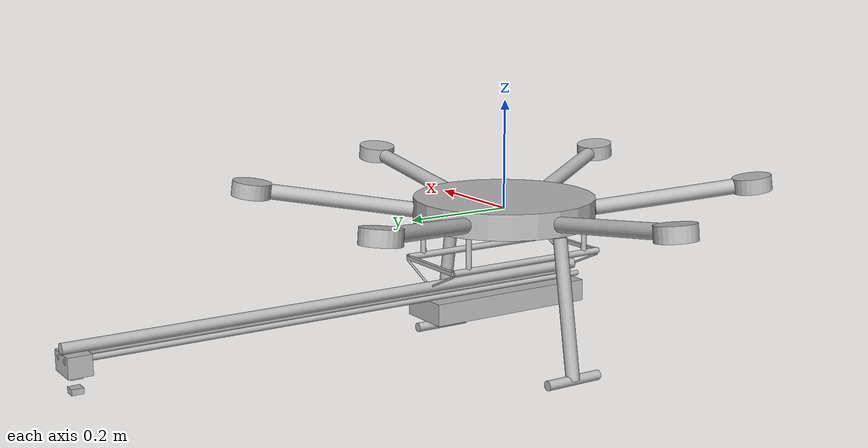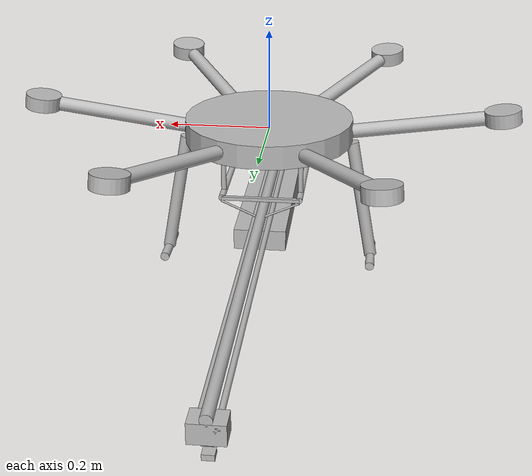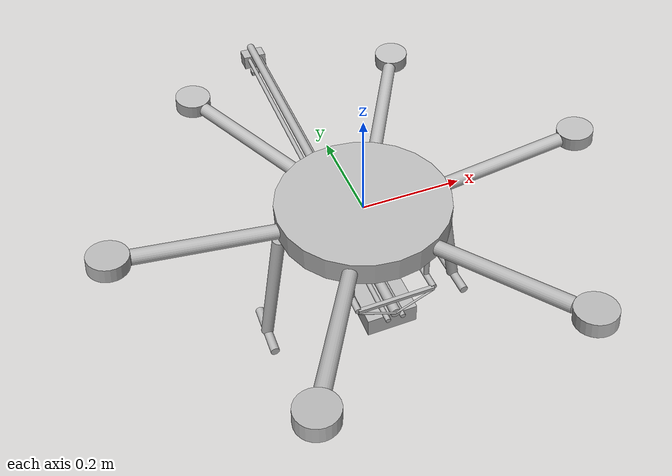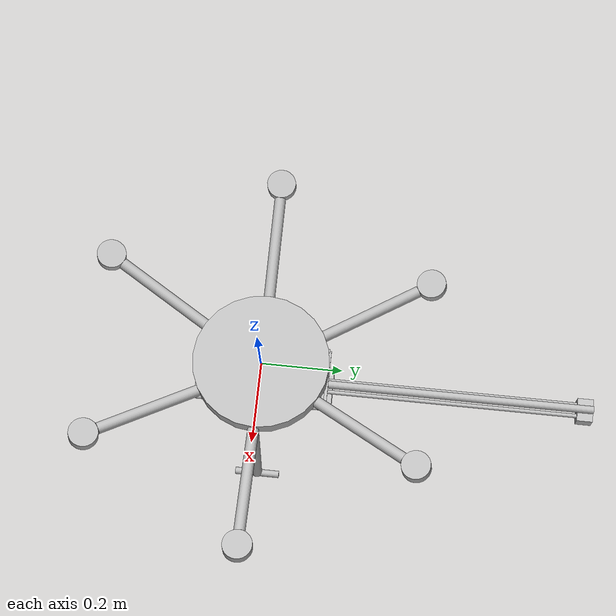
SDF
<sdf version="1.6">
 <model name="UAV">
  <self_collide>true</self_collide>
  <link name="1-gear">
   <pose>0.16811999898880714 0.0 -0.023349999859556547 0.0 -0.17452777756585014 0.0</pose>
   <inertial>
    <inertia><ixx>1.0</ixx><ixy>0.0</ixy><ixz>0.0</ixz><iyy>1.0</iyy><iyz>0.0</iyz><izz>1.0</izz></inertia>
    <mass>1.0</mass>
   </inertial>
   <collision name="1--leg">
    <laser_retro>0.0</laser_retro>
    <pose>0.0 0.0 -0.12654999450109905 0.0 -3.1414999961853027 0.0</pose>
    <geometry>
     <cylinder><radius>0.012499999720603228</radius><length>0.2530999890021981</length></cylinder>
    </geometry>
    <surface>
     <bounce><restitution_coefficient>0.0</restitution_coefficient><threshold>100000.0</threshold></bounce>
     <friction>
      <ode><mu>1.0</mu><mu2>1.0</mu2><fdir1>0.0 0.0 0.0</fdir1><slip1>0.0</slip1><slip2>0.0</slip2></ode>
      <torsional><coefficient>1.0</coefficient><surface_radius>0.0</surface_radius></torsional>
     </friction>
    </surface>
   </collision>
   <visual name="1--leg">
    <laser_retro>0.0</laser_retro>
    <pose>0.0 0.0 -0.12654999450109905 0.0 -3.1414999961853027 0.0</pose>
    <geometry>
     <cylinder><radius>0.012499999720603228</radius><length>0.2530999890021981</length></cylinder>
    </geometry>
    <surface>
     <bounce><restitution_coefficient>0.0</restitution_coefficient><threshold>100000.0</threshold></bounce>
     <friction>
      <ode><mu>1.0</mu><mu2>1.0</mu2><fdir1>0.0 0.0 0.0</fdir1><slip1>0.0</slip1><slip2>0.0</slip2></ode>
      <torsional><coefficient>1.0</coefficient><surface_radius>0.0</surface_radius></torsional>
     </friction>
    </surface>
   </visual>
   <collision name="2--foot">
    <laser_retro>0.0</laser_retro>
    <pose>0.0 0.0 -0.2530999890021981 1.5707499980926514 -1.5707499980926514 0.0</pose>
    <geometry>
     <cylinder><radius>0.00899999956041575</radius><length>0.11249999748542905</length></cylinder>
    </geometry>
    <surface>
     <bounce><restitution_coefficient>0.0</restitution_coefficient><threshold>100000.0</threshold></bounce>
     <friction>
      <ode><mu>1.0</mu><mu2>1.0</mu2><fdir1>0.0 0.0 0.0</fdir1><slip1>0.0</slip1><slip2>0.0</slip2></ode>
      <torsional><coefficient>1.0</coefficient><surface_radius>0.0</surface_radius></torsional>
     </friction>
    </surface>
   </collision>
   <visual name="2--foot">
    <laser_retro>0.0</laser_retro>
    <pose>0.0 0.0 -0.2530999890021981 1.5707499980926514 -1.5707499980926514 0.0</pose>
    <geometry>
     <cylinder><radius>0.00899999956041575</radius><length>0.11249999748542905</length></cylinder>
    </geometry>
    <surface>
     <bounce><restitution_coefficient>0.0</restitution_coefficient><threshold>100000.0</threshold></bounce>
     <friction>
      <ode><mu>1.0</mu><mu2>1.0</mu2><fdir1>0.0 0.0 0.0</fdir1><slip1>0.0</slip1><slip2>0.0</slip2></ode>
      <torsional><coefficient>1.0</coefficient><surface_radius>0.0</surface_radius></torsional>
     </friction>
    </surface>
   </visual>
  </link>
  <joint name="3-fixedJoint" type="fixed">
   <parent>1-gear</parent>
   <child>2-Hub</child>
   <axis><xyz>0 0 1</xyz></axis>
  </joint>
  <link name="4-gear">
   <pose>-0.16811999898880714 0.0 -0.023349999859556547 0.0 -0.17452777756585014 3.1414999961853027</pose>
   <inertial>
    <inertia><ixx>1.0</ixx><ixy>0.0</ixy><ixz>0.0</ixz><iyy>1.0</iyy><iyz>0.0</iyz><izz>1.0</izz></inertia>
    <mass>1.0</mass>
   </inertial>
   <collision name="3--leg">
    <laser_retro>0.0</laser_retro>
    <pose>0.0 0.0 -0.12654999450109905 0.0 -3.1414999961853027 0.0</pose>
    <geometry>
     <cylinder><radius>0.012499999720603228</radius><length>0.2530999890021981</length></cylinder>
    </geometry>
    <surface>
     <bounce><restitution_coefficient>0.0</restitution_coefficient><threshold>100000.0</threshold></bounce>
     <friction>
      <ode><mu>1.0</mu><mu2>1.0</mu2><fdir1>0.0 0.0 0.0</fdir1><slip1>0.0</slip1><slip2>0.0</slip2></ode>
      <torsional><coefficient>1.0</coefficient><surface_radius>0.0</surface_radius></torsional>
     </friction>
    </surface>
   </collision>
   <visual name="3--leg">
    <laser_retro>0.0</laser_retro>
    <pose>0.0 0.0 -0.12654999450109905 0.0 -3.1414999961853027 0.0</pose>
    <geometry>
     <cylinder><radius>0.012499999720603228</radius><length>0.2530999890021981</length></cylinder>
    </geometry>
    <surface>
     <bounce><restitution_coefficient>0.0</restitution_coefficient><threshold>100000.0</threshold></bounce>
     <friction>
      <ode><mu>1.0</mu><mu2>1.0</mu2><fdir1>0.0 0.0 0.0</fdir1><slip1>0.0</slip1><slip2>0.0</slip2></ode>
      <torsional><coefficient>1.0</coefficient><surface_radius>0.0</surface_radius></torsional>
     </friction>
    </surface>
   </visual>
   <collision name="4--foot">
    <laser_retro>0.0</laser_retro>
    <pose>0.0 0.0 -0.2530999890021981 1.5707499980926514 -1.5707499980926514 0.0</pose>
    <geometry>
     <cylinder><radius>0.00899999956041575</radius><length>0.11249999748542905</length></cylinder>
    </geometry>
    <surface>
     <bounce><restitution_coefficient>0.0</restitution_coefficient><threshold>100000.0</threshold></bounce>
     <friction>
      <ode><mu>1.0</mu><mu2>1.0</mu2><fdir1>0.0 0.0 0.0</fdir1><slip1>0.0</slip1><slip2>0.0</slip2></ode>
      <torsional><coefficient>1.0</coefficient><surface_radius>0.0</surface_radius></torsional>
     </friction>
    </surface>
   </collision>
   <visual name="4--foot">
    <laser_retro>0.0</laser_retro>
    <pose>0.0 0.0 -0.2530999890021981 1.5707499980926514 -1.5707499980926514 0.0</pose>
    <geometry>
     <cylinder><radius>0.00899999956041575</radius><length>0.11249999748542905</length></cylinder>
    </geometry>
    <surface>
     <bounce><restitution_coefficient>0.0</restitution_coefficient><threshold>100000.0</threshold></bounce>
     <friction>
      <ode><mu>1.0</mu><mu2>1.0</mu2><fdir1>0.0 0.0 0.0</fdir1><slip1>0.0</slip1><slip2>0.0</slip2></ode>
      <torsional><coefficient>1.0</coefficient><surface_radius>0.0</surface_radius></torsional>
     </friction>
    </surface>
   </visual>
  </link>
  <joint name="5-fixedJoint" type="fixed">
   <parent>4-gear</parent>
   <child>2-Hub</child>
   <axis><xyz>0 0 1</xyz></axis>
  </joint>
  <link name="6-arm">
   <pose>0.08406449630933237 0.14559359367861882 0.0 0.0 -0.1396222220526801 1.0471666653951008</pose>
   <inertial>
    <inertia><ixx>1.0</ixx><ixy>0.0</ixy><ixz>0.0</ixz><iyy>1.0</iyy><iyz>0.0</iyz><izz>1.0</izz></inertia>
    <mass>1.0</mass>
   </inertial>
   <collision name="5--Pole">
    <laser_retro>0.0</laser_retro>
    <pose>0.129949995950982 0.0 0.0 0.0 -1.5707499980926514 0.0</pose>
    <geometry>
     <cylinder><radius>0.013999999448657041</radius><length>0.259899991901964</length></cylinder>
    </geometry>
    <surface>
     <bounce><restitution_coefficient>0.0</restitution_coefficient><threshold>100000.0</threshold></bounce>
     <friction>
      <ode><mu>1.0</mu><mu2>1.0</mu2><fdir1>0.0 0.0 0.0</fdir1><slip1>0.0</slip1><slip2>0.0</slip2></ode>
      <torsional><coefficient>1.0</coefficient><surface_radius>0.0</surface_radius></torsional>
     </friction>
    </surface>
   </collision>
   <visual name="5--Pole">
    <laser_retro>0.0</laser_retro>
    <pose>0.129949995950982 0.0 0.0 0.0 -1.5707499980926514 0.0</pose>
    <geometry>
     <cylinder><radius>0.013999999448657041</radius><length>0.259899991901964</length></cylinder>
    </geometry>
    <surface>
     <bounce><restitution_coefficient>0.0</restitution_coefficient><threshold>100000.0</threshold></bounce>
     <friction>
      <ode><mu>1.0</mu><mu2>1.0</mu2><fdir1>0.0 0.0 0.0</fdir1><slip1>0.0</slip1><slip2>0.0</slip2></ode>
      <torsional><coefficient>1.0</coefficient><surface_radius>0.0</surface_radius></torsional>
     </friction>
    </surface>
   </visual>
   <collision name="6--MotorHolder">
    <laser_retro>0.0</laser_retro>
    <pose>0.295899990143627 0.0 0.0 0.0 0.0 0.0</pose>
    <geometry>
     <cylinder><radius>0.035999998241663</radius><length>0.027999998897314082</length></cylinder>
    </geometry>
    <surface>
     <bounce><restitution_coefficient>0.0</restitution_coefficient><threshold>100000.0</threshold></bounce>
     <friction>
      <ode><mu>1.0</mu><mu2>1.0</mu2><fdir1>0.0 0.0 0.0</fdir1><slip1>0.0</slip1><slip2>0.0</slip2></ode>
      <torsional><coefficient>1.0</coefficient><surface_radius>0.0</surface_radius></torsional>
     </friction>
    </surface>
   </collision>
   <visual name="6--MotorHolder">
    <laser_retro>0.0</laser_retro>
    <pose>0.295899990143627 0.0 0.0 0.0 0.0 0.0</pose>
    <geometry>
     <cylinder><radius>0.035999998241663</radius><length>0.027999998897314082</length></cylinder>
    </geometry>
    <surface>
     <bounce><restitution_coefficient>0.0</restitution_coefficient><threshold>100000.0</threshold></bounce>
     <friction>
      <ode><mu>1.0</mu><mu2>1.0</mu2><fdir1>0.0 0.0 0.0</fdir1><slip1>0.0</slip1><slip2>0.0</slip2></ode>
      <torsional><coefficient>1.0</coefficient><surface_radius>0.0</surface_radius></torsional>
     </friction>
    </surface>
   </visual>
  </link>
  <link name="7-arm">
   <pose>-0.0840510056239875 0.1456013822516563 0.0 0.0 -0.1396222220526801 2.094333330790202</pose>
   <inertial>
    <inertia><ixx>1.0</ixx><ixy>0.0</ixy><ixz>0.0</ixz><iyy>1.0</iyy><iyz>0.0</iyz><izz>1.0</izz></inertia>
    <mass>1.0</mass>
   </inertial>
   <collision name="7--Pole">
    <laser_retro>0.0</laser_retro>
    <pose>0.129949995950982 0.0 0.0 0.0 -1.5707499980926514 0.0</pose>
    <geometry>
     <cylinder><radius>0.013999999448657041</radius><length>0.259899991901964</length></cylinder>
    </geometry>
    <surface>
     <bounce><restitution_coefficient>0.0</restitution_coefficient><threshold>100000.0</threshold></bounce>
     <friction>
      <ode><mu>1.0</mu><mu2>1.0</mu2><fdir1>0.0 0.0 0.0</fdir1><slip1>0.0</slip1><slip2>0.0</slip2></ode>
      <torsional><coefficient>1.0</coefficient><surface_radius>0.0</surface_radius></torsional>
     </friction>
    </surface>
   </collision>
   <visual name="7--Pole">
    <laser_retro>0.0</laser_retro>
    <pose>0.129949995950982 0.0 0.0 0.0 -1.5707499980926514 0.0</pose>
    <geometry>
     <cylinder><radius>0.013999999448657041</radius><length>0.259899991901964</length></cylinder>
    </geometry>
    <surface>
     <bounce><restitution_coefficient>0.0</restitution_coefficient><threshold>100000.0</threshold></bounce>
     <friction>
      <ode><mu>1.0</mu><mu2>1.0</mu2><fdir1>0.0 0.0 0.0</fdir1><slip1>0.0</slip1><slip2>0.0</slip2></ode>
      <torsional><coefficient>1.0</coefficient><surface_radius>0.0</surface_radius></torsional>
     </friction>
    </surface>
   </visual>
   <collision name="8--MotorHolder">
    <laser_retro>0.0</laser_retro>
    <pose>0.295899990143627 0.0 0.0 0.0 0.0 0.0</pose>
    <geometry>
     <cylinder><radius>0.035999998241663</radius><length>0.027999998897314082</length></cylinder>
    </geometry>
    <surface>
     <bounce><restitution_coefficient>0.0</restitution_coefficient><threshold>100000.0</threshold></bounce>
     <friction>
      <ode><mu>1.0</mu><mu2>1.0</mu2><fdir1>0.0 0.0 0.0</fdir1><slip1>0.0</slip1><slip2>0.0</slip2></ode>
      <torsional><coefficient>1.0</coefficient><surface_radius>0.0</surface_radius></torsional>
     </friction>
    </surface>
   </collision>
   <visual name="8--MotorHolder">
    <laser_retro>0.0</laser_retro>
    <pose>0.295899990143627 0.0 0.0 0.0 0.0 0.0</pose>
    <geometry>
     <cylinder><radius>0.035999998241663</radius><length>0.027999998897314082</length></cylinder>
    </geometry>
    <surface>
     <bounce><restitution_coefficient>0.0</restitution_coefficient><threshold>100000.0</threshold></bounce>
     <friction>
      <ode><mu>1.0</mu><mu2>1.0</mu2><fdir1>0.0 0.0 0.0</fdir1><slip1>0.0</slip1><slip2>0.0</slip2></ode>
      <torsional><coefficient>1.0</coefficient><surface_radius>0.0</surface_radius></torsional>
     </friction>
    </surface>
   </visual>
  </link>
  <link name="8-arm">
   <pose>-0.16811999826711888 1.557756272695912E-5 0.0 0.0 -0.1396222220526801 3.1414999961853027</pose>
   <inertial>
    <inertia><ixx>1.0</ixx><ixy>0.0</ixy><ixz>0.0</ixz><iyy>1.0</iyy><iyz>0.0</iyz><izz>1.0</izz></inertia>
    <mass>1.0</mass>
   </inertial>
   <collision name="9--Pole">
    <laser_retro>0.0</laser_retro>
    <pose>0.129949995950982 0.0 0.0 0.0 -1.5707499980926514 0.0</pose>
    <geometry>
     <cylinder><radius>0.013999999448657041</radius><length>0.259899991901964</length></cylinder>
    </geometry>
    <surface>
     <bounce><restitution_coefficient>0.0</restitution_coefficient><threshold>100000.0</threshold></bounce>
     <friction>
      <ode><mu>1.0</mu><mu2>1.0</mu2><fdir1>0.0 0.0 0.0</fdir1><slip1>0.0</slip1><slip2>0.0</slip2></ode>
      <torsional><coefficient>1.0</coefficient><surface_radius>0.0</surface_radius></torsional>
     </friction>
    </surface>
   </collision>
   <visual name="9--Pole">
    <laser_retro>0.0</laser_retro>
    <pose>0.129949995950982 0.0 0.0 0.0 -1.5707499980926514 0.0</pose>
    <geometry>
     <cylinder><radius>0.013999999448657041</radius><length>0.259899991901964</length></cylinder>
    </geometry>
    <surface>
     <bounce><restitution_coefficient>0.0</restitution_coefficient><threshold>100000.0</threshold></bounce>
     <friction>
      <ode><mu>1.0</mu><mu2>1.0</mu2><fdir1>0.0 0.0 0.0</fdir1><slip1>0.0</slip1><slip2>0.0</slip2></ode>
      <torsional><coefficient>1.0</coefficient><surface_radius>0.0</surface_radius></torsional>
     </friction>
    </surface>
   </visual>
   <collision name="10--MotorHolder">
    <laser_retro>0.0</laser_retro>
    <pose>0.295899990143627 0.0 0.0 0.0 0.0 0.0</pose>
    <geometry>
     <cylinder><radius>0.035999998241663</radius><length>0.027999998897314082</length></cylinder>
    </geometry>
    <surface>
     <bounce><restitution_coefficient>0.0</restitution_coefficient><threshold>100000.0</threshold></bounce>
     <friction>
      <ode><mu>1.0</mu><mu2>1.0</mu2><fdir1>0.0 0.0 0.0</fdir1><slip1>0.0</slip1><slip2>0.0</slip2></ode>
      <torsional><coefficient>1.0</coefficient><surface_radius>0.0</surface_radius></torsional>
     </friction>
    </surface>
   </collision>
   <visual name="10--MotorHolder">
    <laser_retro>0.0</laser_retro>
    <pose>0.295899990143627 0.0 0.0 0.0 0.0 0.0</pose>
    <geometry>
     <cylinder><radius>0.035999998241663</radius><length>0.027999998897314082</length></cylinder>
    </geometry>
    <surface>
     <bounce><restitution_coefficient>0.0</restitution_coefficient><threshold>100000.0</threshold></bounce>
     <friction>
      <ode><mu>1.0</mu><mu2>1.0</mu2><fdir1>0.0 0.0 0.0</fdir1><slip1>0.0</slip1><slip2>0.0</slip2></ode>
      <torsional><coefficient>1.0</coefficient><surface_radius>0.0</surface_radius></torsional>
     </friction>
    </surface>
   </visual>
  </link>
  <link name="9-arm">
   <pose>-0.08407798627295038 -0.1455858038556029 0.0 0.0 -0.1396222220526801 -2.0945186455991833</pose>
   <inertial>
    <inertia><ixx>1.0</ixx><ixy>0.0</ixy><ixz>0.0</ixz><iyy>1.0</iyy><iyz>0.0</iyz><izz>1.0</izz></inertia>
    <mass>1.0</mass>
   </inertial>
   <collision name="11--Pole">
    <laser_retro>0.0</laser_retro>
    <pose>0.129949995950982 0.0 0.0 0.0 -1.5707499980926514 0.0</pose>
    <geometry>
     <cylinder><radius>0.013999999448657041</radius><length>0.259899991901964</length></cylinder>
    </geometry>
    <surface>
     <bounce><restitution_coefficient>0.0</restitution_coefficient><threshold>100000.0</threshold></bounce>
     <friction>
      <ode><mu>1.0</mu><mu2>1.0</mu2><fdir1>0.0 0.0 0.0</fdir1><slip1>0.0</slip1><slip2>0.0</slip2></ode>
      <torsional><coefficient>1.0</coefficient><surface_radius>0.0</surface_radius></torsional>
     </friction>
    </surface>
   </collision>
   <visual name="11--Pole">
    <laser_retro>0.0</laser_retro>
    <pose>0.129949995950982 0.0 0.0 0.0 -1.5707499980926514 0.0</pose>
    <geometry>
     <cylinder><radius>0.013999999448657041</radius><length>0.259899991901964</length></cylinder>
    </geometry>
    <surface>
     <bounce><restitution_coefficient>0.0</restitution_coefficient><threshold>100000.0</threshold></bounce>
     <friction>
      <ode><mu>1.0</mu><mu2>1.0</mu2><fdir1>0.0 0.0 0.0</fdir1><slip1>0.0</slip1><slip2>0.0</slip2></ode>
      <torsional><coefficient>1.0</coefficient><surface_radius>0.0</surface_radius></torsional>
     </friction>
    </surface>
   </visual>
   <collision name="12--MotorHolder">
    <laser_retro>0.0</laser_retro>
    <pose>0.295899990143627 0.0 0.0 0.0 0.0 0.0</pose>
    <geometry>
     <cylinder><radius>0.035999998241663</radius><length>0.027999998897314082</length></cylinder>
    </geometry>
    <surface>
     <bounce><restitution_coefficient>0.0</restitution_coefficient><threshold>100000.0</threshold></bounce>
     <friction>
      <ode><mu>1.0</mu><mu2>1.0</mu2><fdir1>0.0 0.0 0.0</fdir1><slip1>0.0</slip1><slip2>0.0</slip2></ode>
      <torsional><coefficient>1.0</coefficient><surface_radius>0.0</surface_radius></torsional>
     </friction>
    </surface>
   </collision>
   <visual name="12--MotorHolder">
    <laser_retro>0.0</laser_retro>
    <pose>0.295899990143627 0.0 0.0 0.0 0.0 0.0</pose>
    <geometry>
     <cylinder><radius>0.035999998241663</radius><length>0.027999998897314082</length></cylinder>
    </geometry>
    <surface>
     <bounce><restitution_coefficient>0.0</restitution_coefficient><threshold>100000.0</threshold></bounce>
     <friction>
      <ode><mu>1.0</mu><mu2>1.0</mu2><fdir1>0.0 0.0 0.0</fdir1><slip1>0.0</slip1><slip2>0.0</slip2></ode>
      <torsional><coefficient>1.0</coefficient><surface_radius>0.0</surface_radius></torsional>
     </friction>
    </surface>
   </visual>
  </link>
  <link name="10-arm">
   <pose>0.08403751421703155 -0.14560916957464848 0.0 0.0 -0.1396222220526801 -1.0473519802040825</pose>
   <inertial>
    <inertia><ixx>1.0</ixx><ixy>0.0</ixy><ixz>0.0</ixz><iyy>1.0</iyy><iyz>0.0</iyz><izz>1.0</izz></inertia>
    <mass>1.0</mass>
   </inertial>
   <collision name="13--Pole">
    <laser_retro>0.0</laser_retro>
    <pose>0.129949995950982 0.0 0.0 0.0 -1.5707499980926514 0.0</pose>
    <geometry>
     <cylinder><radius>0.013999999448657041</radius><length>0.259899991901964</length></cylinder>
    </geometry>
    <surface>
     <bounce><restitution_coefficient>0.0</restitution_coefficient><threshold>100000.0</threshold></bounce>
     <friction>
      <ode><mu>1.0</mu><mu2>1.0</mu2><fdir1>0.0 0.0 0.0</fdir1><slip1>0.0</slip1><slip2>0.0</slip2></ode>
      <torsional><coefficient>1.0</coefficient><surface_radius>0.0</surface_radius></torsional>
     </friction>
    </surface>
   </collision>
   <visual name="13--Pole">
    <laser_retro>0.0</laser_retro>
    <pose>0.129949995950982 0.0 0.0 0.0 -1.5707499980926514 0.0</pose>
    <geometry>
     <cylinder><radius>0.013999999448657041</radius><length>0.259899991901964</length></cylinder>
    </geometry>
    <surface>
     <bounce><restitution_coefficient>0.0</restitution_coefficient><threshold>100000.0</threshold></bounce>
     <friction>
      <ode><mu>1.0</mu><mu2>1.0</mu2><fdir1>0.0 0.0 0.0</fdir1><slip1>0.0</slip1><slip2>0.0</slip2></ode>
      <torsional><coefficient>1.0</coefficient><surface_radius>0.0</surface_radius></torsional>
     </friction>
    </surface>
   </visual>
   <collision name="14--MotorHolder">
    <laser_retro>0.0</laser_retro>
    <pose>0.295899990143627 0.0 0.0 0.0 0.0 0.0</pose>
    <geometry>
     <cylinder><radius>0.035999998241663</radius><length>0.027999998897314082</length></cylinder>
    </geometry>
    <surface>
     <bounce><restitution_coefficient>0.0</restitution_coefficient><threshold>100000.0</threshold></bounce>
     <friction>
      <ode><mu>1.0</mu><mu2>1.0</mu2><fdir1>0.0 0.0 0.0</fdir1><slip1>0.0</slip1><slip2>0.0</slip2></ode>
      <torsional><coefficient>1.0</coefficient><surface_radius>0.0</surface_radius></torsional>
     </friction>
    </surface>
   </collision>
   <visual name="14--MotorHolder">
    <laser_retro>0.0</laser_retro>
    <pose>0.295899990143627 0.0 0.0 0.0 0.0 0.0</pose>
    <geometry>
     <cylinder><radius>0.035999998241663</radius><length>0.027999998897314082</length></cylinder>
    </geometry>
    <surface>
     <bounce><restitution_coefficient>0.0</restitution_coefficient><threshold>100000.0</threshold></bounce>
     <friction>
      <ode><mu>1.0</mu><mu2>1.0</mu2><fdir1>0.0 0.0 0.0</fdir1><slip1>0.0</slip1><slip2>0.0</slip2></ode>
      <torsional><coefficient>1.0</coefficient><surface_radius>0.0</surface_radius></torsional>
     </friction>
    </surface>
   </visual>
  </link>
  <link name="11-arm">
   <pose>0.16811999610205408 -3.115512532017872E-5 0.0 0.0 -0.1396222220526801 -1.8531480898100817E-4</pose>
   <inertial>
    <inertia><ixx>1.0</ixx><ixy>0.0</ixy><ixz>0.0</ixz><iyy>1.0</iyy><iyz>0.0</iyz><izz>1.0</izz></inertia>
    <mass>1.0</mass>
   </inertial>
   <collision name="15--Pole">
    <laser_retro>0.0</laser_retro>
    <pose>0.129949995950982 0.0 0.0 0.0 -1.5707499980926514 0.0</pose>
    <geometry>
     <cylinder><radius>0.013999999448657041</radius><length>0.259899991901964</length></cylinder>
    </geometry>
    <surface>
     <bounce><restitution_coefficient>0.0</restitution_coefficient><threshold>100000.0</threshold></bounce>
     <friction>
      <ode><mu>1.0</mu><mu2>1.0</mu2><fdir1>0.0 0.0 0.0</fdir1><slip1>0.0</slip1><slip2>0.0</slip2></ode>
      <torsional><coefficient>1.0</coefficient><surface_radius>0.0</surface_radius></torsional>
     </friction>
    </surface>
   </collision>
   <visual name="15--Pole">
    <laser_retro>0.0</laser_retro>
    <pose>0.129949995950982 0.0 0.0 0.0 -1.5707499980926514 0.0</pose>
    <geometry>
     <cylinder><radius>0.013999999448657041</radius><length>0.259899991901964</length></cylinder>
    </geometry>
    <surface>
     <bounce><restitution_coefficient>0.0</restitution_coefficient><threshold>100000.0</threshold></bounce>
     <friction>
      <ode><mu>1.0</mu><mu2>1.0</mu2><fdir1>0.0 0.0 0.0</fdir1><slip1>0.0</slip1><slip2>0.0</slip2></ode>
      <torsional><coefficient>1.0</coefficient><surface_radius>0.0</surface_radius></torsional>
     </friction>
    </surface>
   </visual>
   <collision name="16--MotorHolder">
    <laser_retro>0.0</laser_retro>
    <pose>0.295899990143627 0.0 0.0 0.0 0.0 0.0</pose>
    <geometry>
     <cylinder><radius>0.035999998241663</radius><length>0.027999998897314082</length></cylinder>
    </geometry>
    <surface>
     <bounce><restitution_coefficient>0.0</restitution_coefficient><threshold>100000.0</threshold></bounce>
     <friction>
      <ode><mu>1.0</mu><mu2>1.0</mu2><fdir1>0.0 0.0 0.0</fdir1><slip1>0.0</slip1><slip2>0.0</slip2></ode>
      <torsional><coefficient>1.0</coefficient><surface_radius>0.0</surface_radius></torsional>
     </friction>
    </surface>
   </collision>
   <visual name="16--MotorHolder">
    <laser_retro>0.0</laser_retro>
    <pose>0.295899990143627 0.0 0.0 0.0 0.0 0.0</pose>
    <geometry>
     <cylinder><radius>0.035999998241663</radius><length>0.027999998897314082</length></cylinder>
    </geometry>
    <surface>
     <bounce><restitution_coefficient>0.0</restitution_coefficient><threshold>100000.0</threshold></bounce>
     <friction>
      <ode><mu>1.0</mu><mu2>1.0</mu2><fdir1>0.0 0.0 0.0</fdir1><slip1>0.0</slip1><slip2>0.0</slip2></ode>
      <torsional><coefficient>1.0</coefficient><surface_radius>0.0</surface_radius></torsional>
     </friction>
    </surface>
   </visual>
  </link>
  <link name="2-Hub">
   <inertial>
    <inertia><ixx>1.0</ixx><ixy>0.0</ixy><ixz>0.0</ixz><iyy>1.0</iyy><iyz>0.0</iyz><izz>1.0</izz></inertia>
    <mass>9.600000381469727</mass>
   </inertial>
   <collision name="17--Hub">
    <laser_retro>0.0</laser_retro>
    <geometry>
     <cylinder><radius>0.16811999898880714</radius><length>0.046699999719113094</length></cylinder>
    </geometry>
    <surface>
     <bounce><restitution_coefficient>0.0</restitution_coefficient><threshold>100000.0</threshold></bounce>
     <friction>
      <ode><mu>1.0</mu><mu2>1.0</mu2><fdir1>0.0 0.0 0.0</fdir1><slip1>0.0</slip1><slip2>0.0</slip2></ode>
      <torsional><coefficient>1.0</coefficient><surface_radius>0.0</surface_radius></torsional>
     </friction>
    </surface>
   </collision>
   <visual name="17--Hub">
    <laser_retro>0.0</laser_retro>
    <geometry>
     <cylinder><radius>0.16811999898880714</radius><length>0.046699999719113094</length></cylinder>
    </geometry>
    <surface>
     <bounce><restitution_coefficient>0.0</restitution_coefficient><threshold>100000.0</threshold></bounce>
     <friction>
      <ode><mu>1.0</mu><mu2>1.0</mu2><fdir1>0.0 0.0 0.0</fdir1><slip1>0.0</slip1><slip2>0.0</slip2></ode>
      <torsional><coefficient>1.0</coefficient><surface_radius>0.0</surface_radius></torsional>
     </friction>
    </surface>
   </visual>
  </link>
  <link name="12-MainFrame">
   <pose>0.0 0.0 -0.08615000055395061 0.0 0.0 0.0</pose>
   <inertial>
    <inertia><ixx>1.0</ixx><ixy>0.0</ixy><ixz>0.0</ixz><iyy>1.0</iyy><iyz>0.0</iyz><izz>1.0</izz></inertia>
    <mass>1.0</mass>
   </inertial>
   <collision name="18--MainFrameBody">
    <laser_retro>0.0</laser_retro>
    <pose>-0.07459999871402978 0.0 0.0 -1.5707499980926514 0.0 0.0</pose>
    <geometry>
     <cylinder><radius>0.006000000104308123</radius><length>0.3240000080168244</length></cylinder>
    </geometry>
    <surface>
     <bounce><restitution_coefficient>0.0</restitution_coefficient><threshold>100000.0</threshold></bounce>
     <friction>
      <ode><mu>1.0</mu><mu2>1.0</mu2><fdir1>0.0 0.0 0.0</fdir1><slip1>0.0</slip1><slip2>0.0</slip2></ode>
      <torsional><coefficient>1.0</coefficient><surface_radius>0.0</surface_radius></torsional>
     </friction>
    </surface>
   </collision>
   <visual name="18--MainFrameBody">
    <laser_retro>0.0</laser_retro>
    <pose>-0.07459999871402978 0.0 0.0 -1.5707499980926514 0.0 0.0</pose>
    <geometry>
     <cylinder><radius>0.006000000104308123</radius><length>0.3240000080168244</length></cylinder>
    </geometry>
    <surface>
     <bounce><restitution_coefficient>0.0</restitution_coefficient><threshold>100000.0</threshold></bounce>
     <friction>
      <ode><mu>1.0</mu><mu2>1.0</mu2><fdir1>0.0 0.0 0.0</fdir1><slip1>0.0</slip1><slip2>0.0</slip2></ode>
      <torsional><coefficient>1.0</coefficient><surface_radius>0.0</surface_radius></torsional>
     </friction>
    </surface>
   </visual>
   <collision name="19--MainFrameBody">
    <laser_retro>0.0</laser_retro>
    <pose>0.07459999871402978 0.0 0.0 -1.5707499980926514 0.0 0.0</pose>
    <geometry>
     <cylinder><radius>0.006000000104308123</radius><length>0.3240000080168244</length></cylinder>
    </geometry>
    <surface>
     <bounce><restitution_coefficient>0.0</restitution_coefficient><threshold>100000.0</threshold></bounce>
     <friction>
      <ode><mu>1.0</mu><mu2>1.0</mu2><fdir1>0.0 0.0 0.0</fdir1><slip1>0.0</slip1><slip2>0.0</slip2></ode>
      <torsional><coefficient>1.0</coefficient><surface_radius>0.0</surface_radius></torsional>
     </friction>
    </surface>
   </collision>
   <visual name="19--MainFrameBody">
    <laser_retro>0.0</laser_retro>
    <pose>0.07459999871402978 0.0 0.0 -1.5707499980926514 0.0 0.0</pose>
    <geometry>
     <cylinder><radius>0.006000000104308123</radius><length>0.3240000080168244</length></cylinder>
    </geometry>
    <surface>
     <bounce><restitution_coefficient>0.0</restitution_coefficient><threshold>100000.0</threshold></bounce>
     <friction>
      <ode><mu>1.0</mu><mu2>1.0</mu2><fdir1>0.0 0.0 0.0</fdir1><slip1>0.0</slip1><slip2>0.0</slip2></ode>
      <torsional><coefficient>1.0</coefficient><surface_radius>0.0</surface_radius></torsional>
     </friction>
    </surface>
   </visual>
   <collision name="20--SideFrameBody">
    <laser_retro>0.0</laser_retro>
    <pose>0.0 -0.1620000040084122 0.0 0.0 0.0 0.0</pose>
    <geometry><box><size>0.14919999742805956 0.007599999734759333 0.006799999919533728</size></box></geometry>
    <surface>
     <bounce><restitution_coefficient>0.0</restitution_coefficient><threshold>100000.0</threshold></bounce>
     <friction>
      <ode><mu>1.0</mu><mu2>1.0</mu2><fdir1>0.0 0.0 0.0</fdir1><slip1>0.0</slip1><slip2>0.0</slip2></ode>
      <torsional><coefficient>1.0</coefficient><surface_radius>0.0</surface_radius></torsional>
     </friction>
    </surface>
   </collision>
   <visual name="20--SideFrameBody">
    <laser_retro>0.0</laser_retro>
    <pose>0.0 -0.1620000040084122 0.0 0.0 0.0 0.0</pose>
    <geometry><box><size>0.14919999742805956 0.007599999734759333 0.006799999919533728</size></box></geometry>
    <surface>
     <bounce><restitution_coefficient>0.0</restitution_coefficient><threshold>100000.0</threshold></bounce>
     <friction>
      <ode><mu>1.0</mu><mu2>1.0</mu2><fdir1>0.0 0.0 0.0</fdir1><slip1>0.0</slip1><slip2>0.0</slip2></ode>
      <torsional><coefficient>1.0</coefficient><surface_radius>0.0</surface_radius></torsional>
     </friction>
    </surface>
   </visual>
   <collision name="21--SideFrameBody">
    <laser_retro>0.0</laser_retro>
    <pose>0.0 0.1620000040084122 0.0 0.0 0.0 0.0</pose>
    <geometry><box><size>0.14919999742805956 0.007599999734759333 0.006799999919533728</size></box></geometry>
    <surface>
     <bounce><restitution_coefficient>0.0</restitution_coefficient><threshold>100000.0</threshold></bounce>
     <friction>
      <ode><mu>1.0</mu><mu2>1.0</mu2><fdir1>0.0 0.0 0.0</fdir1><slip1>0.0</slip1><slip2>0.0</slip2></ode>
      <torsional><coefficient>1.0</coefficient><surface_radius>0.0</surface_radius></torsional>
     </friction>
    </surface>
   </collision>
   <visual name="21--SideFrameBody">
    <laser_retro>0.0</laser_retro>
    <pose>0.0 0.1620000040084122 0.0 0.0 0.0 0.0</pose>
    <geometry><box><size>0.14919999742805956 0.007599999734759333 0.006799999919533728</size></box></geometry>
    <surface>
     <bounce><restitution_coefficient>0.0</restitution_coefficient><threshold>100000.0</threshold></bounce>
     <friction>
      <ode><mu>1.0</mu><mu2>1.0</mu2><fdir1>0.0 0.0 0.0</fdir1><slip1>0.0</slip1><slip2>0.0</slip2></ode>
      <torsional><coefficient>1.0</coefficient><surface_radius>0.0</surface_radius></torsional>
     </friction>
    </surface>
   </visual>
   <collision name="22--Pole">
    <laser_retro>0.0</laser_retro>
    <pose>0.07456046311406014 0.1291368209377475 0.03140000034719703 0.0 0.0 0.0</pose>
    <geometry>
     <cylinder><radius>0.004999999888241291</radius><length>0.06280000069439406</length></cylinder>
    </geometry>
    <surface>
     <bounce><restitution_coefficient>0.0</restitution_coefficient><threshold>100000.0</threshold></bounce>
     <friction>
      <ode><mu>1.0</mu><mu2>1.0</mu2><fdir1>0.0 0.0 0.0</fdir1><slip1>0.0</slip1><slip2>0.0</slip2></ode>
      <torsional><coefficient>1.0</coefficient><surface_radius>0.0</surface_radius></torsional>
     </friction>
    </surface>
   </collision>
   <visual name="22--Pole">
    <laser_retro>0.0</laser_retro>
    <pose>0.07456046311406014 0.1291368209377475 0.03140000034719703 0.0 0.0 0.0</pose>
    <geometry>
     <cylinder><radius>0.004999999888241291</radius><length>0.06280000069439406</length></cylinder>
    </geometry>
    <surface>
     <bounce><restitution_coefficient>0.0</restitution_coefficient><threshold>100000.0</threshold></bounce>
     <friction>
      <ode><mu>1.0</mu><mu2>1.0</mu2><fdir1>0.0 0.0 0.0</fdir1><slip1>0.0</slip1><slip2>0.0</slip2></ode>
      <torsional><coefficient>1.0</coefficient><surface_radius>0.0</surface_radius></torsional>
     </friction>
    </surface>
   </visual>
   <collision name="23--Pole">
    <laser_retro>0.0</laser_retro>
    <pose>-0.0745515473213832 0.1291419682894703 0.03140000034719703 0.0 0.0 0.0</pose>
    <geometry>
     <cylinder><radius>0.004999999888241291</radius><length>0.06280000069439406</length></cylinder>
    </geometry>
    <surface>
     <bounce><restitution_coefficient>0.0</restitution_coefficient><threshold>100000.0</threshold></bounce>
     <friction>
      <ode><mu>1.0</mu><mu2>1.0</mu2><fdir1>0.0 0.0 0.0</fdir1><slip1>0.0</slip1><slip2>0.0</slip2></ode>
      <torsional><coefficient>1.0</coefficient><surface_radius>0.0</surface_radius></torsional>
     </friction>
    </surface>
   </collision>
   <visual name="23--Pole">
    <laser_retro>0.0</laser_retro>
    <pose>-0.0745515473213832 0.1291419682894703 0.03140000034719703 0.0 0.0 0.0</pose>
    <geometry>
     <cylinder><radius>0.004999999888241291</radius><length>0.06280000069439406</length></cylinder>
    </geometry>
    <surface>
     <bounce><restitution_coefficient>0.0</restitution_coefficient><threshold>100000.0</threshold></bounce>
     <friction>
      <ode><mu>1.0</mu><mu2>1.0</mu2><fdir1>0.0 0.0 0.0</fdir1><slip1>0.0</slip1><slip2>0.0</slip2></ode>
      <torsional><coefficient>1.0</coefficient><surface_radius>0.0</surface_radius></torsional>
     </friction>
    </surface>
   </visual>
   <collision name="24--Pole">
    <laser_retro>0.0</laser_retro>
    <pose>-0.07457242827662981 -0.12912991180442235 0.03140000034719703 0.0 0.0 0.0</pose>
    <geometry>
     <cylinder><radius>0.004999999888241291</radius><length>0.06280000069439406</length></cylinder>
    </geometry>
    <surface>
     <bounce><restitution_coefficient>0.0</restitution_coefficient><threshold>100000.0</threshold></bounce>
     <friction>
      <ode><mu>1.0</mu><mu2>1.0</mu2><fdir1>0.0 0.0 0.0</fdir1><slip1>0.0</slip1><slip2>0.0</slip2></ode>
      <torsional><coefficient>1.0</coefficient><surface_radius>0.0</surface_radius></torsional>
     </friction>
    </surface>
   </collision>
   <visual name="24--Pole">
    <laser_retro>0.0</laser_retro>
    <pose>-0.07457242827662981 -0.12912991180442235 0.03140000034719703 0.0 0.0 0.0</pose>
    <geometry>
     <cylinder><radius>0.004999999888241291</radius><length>0.06280000069439406</length></cylinder>
    </geometry>
    <surface>
     <bounce><restitution_coefficient>0.0</restitution_coefficient><threshold>100000.0</threshold></bounce>
     <friction>
      <ode><mu>1.0</mu><mu2>1.0</mu2><fdir1>0.0 0.0 0.0</fdir1><slip1>0.0</slip1><slip2>0.0</slip2></ode>
      <torsional><coefficient>1.0</coefficient><surface_radius>0.0</surface_radius></torsional>
     </friction>
    </surface>
   </visual>
   <collision name="25--Pole">
    <laser_retro>0.0</laser_retro>
    <pose>0.07453958104178053 -0.12914887548796863 0.03140000034719703 0.0 0.0 0.0</pose>
    <geometry>
     <cylinder><radius>0.004999999888241291</radius><length>0.06280000069439406</length></cylinder>
    </geometry>
    <surface>
     <bounce><restitution_coefficient>0.0</restitution_coefficient><threshold>100000.0</threshold></bounce>
     <friction>
      <ode><mu>1.0</mu><mu2>1.0</mu2><fdir1>0.0 0.0 0.0</fdir1><slip1>0.0</slip1><slip2>0.0</slip2></ode>
      <torsional><coefficient>1.0</coefficient><surface_radius>0.0</surface_radius></torsional>
     </friction>
    </surface>
   </collision>
   <visual name="25--Pole">
    <laser_retro>0.0</laser_retro>
    <pose>0.07453958104178053 -0.12914887548796863 0.03140000034719703 0.0 0.0 0.0</pose>
    <geometry>
     <cylinder><radius>0.004999999888241291</radius><length>0.06280000069439406</length></cylinder>
    </geometry>
    <surface>
     <bounce><restitution_coefficient>0.0</restitution_coefficient><threshold>100000.0</threshold></bounce>
     <friction>
      <ode><mu>1.0</mu><mu2>1.0</mu2><fdir1>0.0 0.0 0.0</fdir1><slip1>0.0</slip1><slip2>0.0</slip2></ode>
      <torsional><coefficient>1.0</coefficient><surface_radius>0.0</surface_radius></torsional>
     </friction>
    </surface>
   </visual>
  </link>
  <joint name="14-fixedJoint" type="fixed">
   <parent>12-MainFrame</parent>
   <child>13-Attachment</child>
   <axis><xyz>0 0 1</xyz></axis>
  </joint>
  <joint name="16-fixedJoint" type="fixed">
   <parent>12-MainFrame</parent>
   <child>15-Attachment</child>
   <axis><xyz>0 0 1</xyz></axis>
  </joint>
  <joint name="17-fixedJoint" type="fixed">
   <parent>2-Hub</parent>
   <child>11-arm</child>
   <axis><xyz>0 0 1</xyz></axis>
  </joint>
  <joint name="18-fixedJoint" type="fixed">
   <parent>2-Hub</parent>
   <child>10-arm</child>
   <axis><xyz>0 0 1</xyz></axis>
  </joint>
  <joint name="19-fixedJoint" type="fixed">
   <parent>2-Hub</parent>
   <child>9-arm</child>
   <axis><xyz>0 0 1</xyz></axis>
  </joint>
  <joint name="20-fixedJoint" type="fixed">
   <parent>2-Hub</parent>
   <child>8-arm</child>
   <axis><xyz>0 0 1</xyz></axis>
  </joint>
  <joint name="21-fixedJoint" type="fixed">
   <parent>2-Hub</parent>
   <child>7-arm</child>
   <axis><xyz>0 0 1</xyz></axis>
  </joint>
  <joint name="22-fixedJoint" type="fixed">
   <parent>2-Hub</parent>
   <child>6-arm</child>
   <axis><xyz>0 0 1</xyz></axis>
  </joint>
  <joint name="23-fixedJoint" type="fixed">
   <parent>12-MainFrame</parent>
   <child>2-Hub</child>
   <axis><xyz>0 0 1</xyz></axis>
  </joint>
  <link name="24-Pole">
   <pose>0.0 0.3379999848157169 -0.12603999929040666 0.0 -1.5707499980926514 1.5707499980926514</pose>
   <inertial>
    <inertia><ixx>1.0</ixx><ixy>0.0</ixy><ixz>0.0</ixz><iyy>1.0</iyy><iyz>0.0</iyz><izz>1.0</izz></inertia>
    <mass>1.5755999982357025</mass>
   </inertial>
   <collision name="26--Pole">
    <laser_retro>0.0</laser_retro>
    <geometry>
     <cylinder><radius>0.009999999776482582</radius><length>0.9999999776482582</length></cylinder>
    </geometry>
    <surface>
     <bounce><restitution_coefficient>0.0</restitution_coefficient><threshold>100000.0</threshold></bounce>
     <friction>
      <ode><mu>1.0</mu><mu2>1.0</mu2><fdir1>0.0 0.0 0.0</fdir1><slip1>0.0</slip1><slip2>0.0</slip2></ode>
      <torsional><coefficient>1.0</coefficient><surface_radius>0.0</surface_radius></torsional>
     </friction>
    </surface>
   </collision>
   <visual name="26--Pole">
    <laser_retro>0.0</laser_retro>
    <geometry>
     <cylinder><radius>0.009999999776482582</radius><length>0.9999999776482582</length></cylinder>
    </geometry>
    <surface>
     <bounce><restitution_coefficient>0.0</restitution_coefficient><threshold>100000.0</threshold></bounce>
     <friction>
      <ode><mu>1.0</mu><mu2>1.0</mu2><fdir1>0.0 0.0 0.0</fdir1><slip1>0.0</slip1><slip2>0.0</slip2></ode>
      <torsional><coefficient>1.0</coefficient><surface_radius>0.0</surface_radius></torsional>
     </friction>
    </surface>
   </visual>
   <collision name="27--LeftPole">
    <laser_retro>0.0</laser_retro>
    <pose>-0.016105999586597086 -0.014999999664723873 0.0 0.0 0.0 0.0</pose>
    <geometry>
     <cylinder><radius>0.004999999888241291</radius><length>0.9999999776482582</length></cylinder>
    </geometry>
    <surface>
     <bounce><restitution_coefficient>0.0</restitution_coefficient><threshold>100000.0</threshold></bounce>
     <friction>
      <ode><mu>1.0</mu><mu2>1.0</mu2><fdir1>0.0 0.0 0.0</fdir1><slip1>0.0</slip1><slip2>0.0</slip2></ode>
      <torsional><coefficient>1.0</coefficient><surface_radius>0.0</surface_radius></torsional>
     </friction>
    </surface>
   </collision>
   <visual name="27--LeftPole">
    <laser_retro>0.0</laser_retro>
    <pose>-0.016105999586597086 -0.014999999664723873 0.0 0.0 0.0 0.0</pose>
    <geometry>
     <cylinder><radius>0.004999999888241291</radius><length>0.9999999776482582</length></cylinder>
    </geometry>
    <surface>
     <bounce><restitution_coefficient>0.0</restitution_coefficient><threshold>100000.0</threshold></bounce>
     <friction>
      <ode><mu>1.0</mu><mu2>1.0</mu2><fdir1>0.0 0.0 0.0</fdir1><slip1>0.0</slip1><slip2>0.0</slip2></ode>
      <torsional><coefficient>1.0</coefficient><surface_radius>0.0</surface_radius></torsional>
     </friction>
    </surface>
   </visual>
   <collision name="28--RightPole">
    <laser_retro>0.0</laser_retro>
    <pose>-0.016105999586597086 0.014999999664723873 0.0 0.0 0.0 0.0</pose>
    <geometry>
     <cylinder><radius>0.004999999888241291</radius><length>0.9999999776482582</length></cylinder>
    </geometry>
    <surface>
     <bounce><restitution_coefficient>0.0</restitution_coefficient><threshold>100000.0</threshold></bounce>
     <friction>
      <ode><mu>1.0</mu><mu2>1.0</mu2><fdir1>0.0 0.0 0.0</fdir1><slip1>0.0</slip1><slip2>0.0</slip2></ode>
      <torsional><coefficient>1.0</coefficient><surface_radius>0.0</surface_radius></torsional>
     </friction>
    </surface>
   </collision>
   <visual name="28--RightPole">
    <laser_retro>0.0</laser_retro>
    <pose>-0.016105999586597086 0.014999999664723873 0.0 0.0 0.0 0.0</pose>
    <geometry>
     <cylinder><radius>0.004999999888241291</radius><length>0.9999999776482582</length></cylinder>
    </geometry>
    <surface>
     <bounce><restitution_coefficient>0.0</restitution_coefficient><threshold>100000.0</threshold></bounce>
     <friction>
      <ode><mu>1.0</mu><mu2>1.0</mu2><fdir1>0.0 0.0 0.0</fdir1><slip1>0.0</slip1><slip2>0.0</slip2></ode>
      <torsional><coefficient>1.0</coefficient><surface_radius>0.0</surface_radius></torsional>
     </friction>
    </surface>
   </visual>
   <collision name="29--GimbalMount">
    <laser_retro>0.0</laser_retro>
    <pose>-0.023780998652108032 0.0 -0.47999998927116394 0.0 0.0 0.0</pose>
    <geometry><box><size>0.03474999826960268 0.05899999963492153 0.03999999910593033</size></box></geometry>
    <surface>
     <bounce><restitution_coefficient>0.0</restitution_coefficient><threshold>100000.0</threshold></bounce>
     <friction>
      <ode><mu>1.0</mu><mu2>1.0</mu2><fdir1>0.0 0.0 0.0</fdir1><slip1>0.0</slip1><slip2>0.0</slip2></ode>
      <torsional><coefficient>1.0</coefficient><surface_radius>0.0</surface_radius></torsional>
     </friction>
    </surface>
   </collision>
   <visual name="29--GimbalMount">
    <laser_retro>0.0</laser_retro>
    <pose>-0.023780998652108032 0.0 -0.47999998927116394 0.0 0.0 0.0</pose>
    <geometry><box><size>0.03474999826960268 0.05899999963492153 0.03999999910593033</size></box></geometry>
    <surface>
     <bounce><restitution_coefficient>0.0</restitution_coefficient><threshold>100000.0</threshold></bounce>
     <friction>
      <ode><mu>1.0</mu><mu2>1.0</mu2><fdir1>0.0 0.0 0.0</fdir1><slip1>0.0</slip1><slip2>0.0</slip2></ode>
      <torsional><coefficient>1.0</coefficient><surface_radius>0.0</surface_radius></torsional>
     </friction>
    </surface>
   </visual>
   <collision name="30--WaterTank">
    <laser_retro>0.0</laser_retro>
    <pose>-0.03999999910593033 0.0 0.3240000080168244 0.0 1.5707499980926514 0.0</pose>
    <geometry><box><size>0.3240000080168244 0.09999999776482582 0.03999999910593033</size></box></geometry>
    <surface>
     <bounce><restitution_coefficient>0.0</restitution_coefficient><threshold>100000.0</threshold></bounce>
     <friction>
      <ode><mu>1.0</mu><mu2>1.0</mu2><fdir1>0.0 0.0 0.0</fdir1><slip1>0.0</slip1><slip2>0.0</slip2></ode>
      <torsional><coefficient>1.0</coefficient><surface_radius>0.0</surface_radius></torsional>
     </friction>
    </surface>
   </collision>
   <visual name="30--WaterTank">
    <laser_retro>0.0</laser_retro>
    <pose>-0.03999999910593033 0.0 0.3240000080168244 0.0 1.5707499980926514 0.0</pose>
    <geometry><box><size>0.3240000080168244 0.09999999776482582 0.03999999910593033</size></box></geometry>
    <surface>
     <bounce><restitution_coefficient>0.0</restitution_coefficient><threshold>100000.0</threshold></bounce>
     <friction>
      <ode><mu>1.0</mu><mu2>1.0</mu2><fdir1>0.0 0.0 0.0</fdir1><slip1>0.0</slip1><slip2>0.0</slip2></ode>
      <torsional><coefficient>1.0</coefficient><surface_radius>0.0</surface_radius></torsional>
     </friction>
    </surface>
   </visual>
  </link>
  <link name="25-GimballPitchBase">
   <pose>0.0 0.837999973639846 -0.1705399987725913 0.0 -0.0 0.0</pose>
   <inertial>
    <inertia><ixx>1.0</ixx><ixy>0.0</ixy><ixz>0.0</ixz><iyy>1.0</iyy><iyz>0.0</iyz><izz>1.0</izz></inertia>
    <mass>0.01850000023841858</mass>
   </inertial>
   <collision name="31--Base">
    <laser_retro>0.0</laser_retro>
    <pose>0.0 -0.019999999552965164 0.0 0.0 0.0 0.0</pose>
    <geometry><box><size>0.019999999552965164 0.019999999552965164 0.009999999776482582</size></box></geometry>
    <surface>
     <bounce><restitution_coefficient>0.0</restitution_coefficient><threshold>100000.0</threshold></bounce>
     <friction>
      <ode><mu>1.0</mu><mu2>1.0</mu2><fdir1>0.0 0.0 0.0</fdir1><slip1>0.0</slip1><slip2>0.0</slip2></ode>
      <torsional><coefficient>1.0</coefficient><surface_radius>0.0</surface_radius></torsional>
     </friction>
    </surface>
   </collision>
   <visual name="31--Base">
    <laser_retro>0.0</laser_retro>
    <pose>0.0 -0.019999999552965164 0.0 0.0 0.0 0.0</pose>
    <geometry><box><size>0.019999999552965164 0.019999999552965164 0.009999999776482582</size></box></geometry>
    <surface>
     <bounce><restitution_coefficient>0.0</restitution_coefficient><threshold>100000.0</threshold></bounce>
     <friction>
      <ode><mu>1.0</mu><mu2>1.0</mu2><fdir1>0.0 0.0 0.0</fdir1><slip1>0.0</slip1><slip2>0.0</slip2></ode>
      <torsional><coefficient>1.0</coefficient><surface_radius>0.0</surface_radius></torsional>
     </friction>
    </surface>
   </visual>
  </link>
  <link name="26-Dispenser">
   <pose>0.0 0.8279999738633634 -0.17553999866083259 0.0 -0.0 0.0</pose>
   <inertial>
    <inertia><ixx>1.0</ixx><ixy>0.0</ixy><ixz>0.0</ixz><iyy>1.0</iyy><iyz>0.0</iyz><izz>1.0</izz></inertia>
    <mass>0.01850000023841858</mass>
   </inertial>
   <collision name="32--DispenserBase">
    <laser_retro>0.0</laser_retro>
    <pose>0.0 -0.009999999776482582 -0.019999999552965164 0.0 0.0 0.0</pose>
    <geometry><box><size>0.019999999552965164 0.019999999552965164 0.009999999776482582</size></box></geometry>
    <surface>
     <bounce><restitution_coefficient>0.0</restitution_coefficient><threshold>100000.0</threshold></bounce>
     <friction>
      <ode><mu>1.0</mu><mu2>1.0</mu2><fdir1>0.0 0.0 0.0</fdir1><slip1>0.0</slip1><slip2>0.0</slip2></ode>
      <torsional><coefficient>1.0</coefficient><surface_radius>0.0</surface_radius></torsional>
     </friction>
    </surface>
   </collision>
   <visual name="32--DispenserBase">
    <laser_retro>0.0</laser_retro>
    <pose>0.0 -0.009999999776482582 -0.019999999552965164 0.0 0.0 0.0</pose>
    <geometry><box><size>0.019999999552965164 0.019999999552965164 0.009999999776482582</size></box></geometry>
    <surface>
     <bounce><restitution_coefficient>0.0</restitution_coefficient><threshold>100000.0</threshold></bounce>
     <friction>
      <ode><mu>1.0</mu><mu2>1.0</mu2><fdir1>0.0 0.0 0.0</fdir1><slip1>0.0</slip1><slip2>0.0</slip2></ode>
      <torsional><coefficient>1.0</coefficient><surface_radius>0.0</surface_radius></torsional>
     </friction>
    </surface>
   </visual>
  </link>
  <link name="15-Attachment">
   <pose>0.0 -0.1620000040084122 -0.10909530363642497 0.0 -0.0 0.0</pose>
   <inertial>
    <inertia><ixx>1.0</ixx><ixy>0.0</ixy><ixz>0.0</ixz><iyy>1.0</iyy><iyz>0.0</iyz><izz>1.0</izz></inertia>
    <mass>0.10000000149011612</mass>
   </inertial>
   <collision name="33--Left">
    <laser_retro>0.0</laser_retro>
    <pose>-0.03749999916180968 0.0 0.0 0.0 1.995155155658722 0.0</pose>
    <geometry>
     <cylinder><radius>0.0019099156809148092</radius><length>0.08229999358281503</length></cylinder>
    </geometry>
    <surface>
     <bounce><restitution_coefficient>0.0</restitution_coefficient><threshold>100000.0</threshold></bounce>
     <friction>
      <ode><mu>1.0</mu><mu2>1.0</mu2><fdir1>0.0 0.0 0.0</fdir1><slip1>0.0</slip1><slip2>0.0</slip2></ode>
      <torsional><coefficient>1.0</coefficient><surface_radius>0.0</surface_radius></torsional>
     </friction>
    </surface>
   </collision>
   <visual name="33--Left">
    <laser_retro>0.0</laser_retro>
    <pose>-0.03749999916180968 0.0 0.0 0.0 1.995155155658722 0.0</pose>
    <geometry>
     <cylinder><radius>0.0019099156809148092</radius><length>0.08229999358281503</length></cylinder>
    </geometry>
    <surface>
     <bounce><restitution_coefficient>0.0</restitution_coefficient><threshold>100000.0</threshold></bounce>
     <friction>
      <ode><mu>1.0</mu><mu2>1.0</mu2><fdir1>0.0 0.0 0.0</fdir1><slip1>0.0</slip1><slip2>0.0</slip2></ode>
      <torsional><coefficient>1.0</coefficient><surface_radius>0.0</surface_radius></torsional>
     </friction>
    </surface>
   </visual>
   <collision name="34--Right">
    <laser_retro>0.0</laser_retro>
    <pose>0.03749999916180968 0.0 0.0 0.0 1.995155155658722 3.1414999961853027</pose>
    <geometry>
     <cylinder><radius>0.0019099156809148092</radius><length>0.08229999358281503</length></cylinder>
    </geometry>
    <surface>
     <bounce><restitution_coefficient>0.0</restitution_coefficient><threshold>100000.0</threshold></bounce>
     <friction>
      <ode><mu>1.0</mu><mu2>1.0</mu2><fdir1>0.0 0.0 0.0</fdir1><slip1>0.0</slip1><slip2>0.0</slip2></ode>
      <torsional><coefficient>1.0</coefficient><surface_radius>0.0</surface_radius></torsional>
     </friction>
    </surface>
   </collision>
   <visual name="34--Right">
    <laser_retro>0.0</laser_retro>
    <pose>0.03749999916180968 0.0 0.0 0.0 1.995155155658722 3.1414999961853027</pose>
    <geometry>
     <cylinder><radius>0.0019099156809148092</radius><length>0.08229999358281503</length></cylinder>
    </geometry>
    <surface>
     <bounce><restitution_coefficient>0.0</restitution_coefficient><threshold>100000.0</threshold></bounce>
     <friction>
      <ode><mu>1.0</mu><mu2>1.0</mu2><fdir1>0.0 0.0 0.0</fdir1><slip1>0.0</slip1><slip2>0.0</slip2></ode>
      <torsional><coefficient>1.0</coefficient><surface_radius>0.0</surface_radius></torsional>
     </friction>
    </surface>
   </visual>
  </link>
  <link name="13-Attachment">
   <pose>0.0 0.1620000040084122 -0.10909530363642497 0.0 -0.0 0.0</pose>
   <inertial>
    <inertia><ixx>1.0</ixx><ixy>0.0</ixy><ixz>0.0</ixz><iyy>1.0</iyy><iyz>0.0</iyz><izz>1.0</izz></inertia>
    <mass>0.10000000149011612</mass>
   </inertial>
   <collision name="35--Left">
    <laser_retro>0.0</laser_retro>
    <pose>-0.03749999916180968 0.0 0.0 0.0 1.995155155658722 0.0</pose>
    <geometry>
     <cylinder><radius>0.0019099156809148092</radius><length>0.08229999358281503</length></cylinder>
    </geometry>
    <surface>
     <bounce><restitution_coefficient>0.0</restitution_coefficient><threshold>100000.0</threshold></bounce>
     <friction>
      <ode><mu>1.0</mu><mu2>1.0</mu2><fdir1>0.0 0.0 0.0</fdir1><slip1>0.0</slip1><slip2>0.0</slip2></ode>
      <torsional><coefficient>1.0</coefficient><surface_radius>0.0</surface_radius></torsional>
     </friction>
    </surface>
   </collision>
   <visual name="35--Left">
    <laser_retro>0.0</laser_retro>
    <pose>-0.03749999916180968 0.0 0.0 0.0 1.995155155658722 0.0</pose>
    <geometry>
     <cylinder><radius>0.0019099156809148092</radius><length>0.08229999358281503</length></cylinder>
    </geometry>
    <surface>
     <bounce><restitution_coefficient>0.0</restitution_coefficient><threshold>100000.0</threshold></bounce>
     <friction>
      <ode><mu>1.0</mu><mu2>1.0</mu2><fdir1>0.0 0.0 0.0</fdir1><slip1>0.0</slip1><slip2>0.0</slip2></ode>
      <torsional><coefficient>1.0</coefficient><surface_radius>0.0</surface_radius></torsional>
     </friction>
    </surface>
   </visual>
   <collision name="36--Right">
    <laser_retro>0.0</laser_retro>
    <pose>0.03749999916180968 0.0 0.0 0.0 1.995155155658722 3.1414999961853027</pose>
    <geometry>
     <cylinder><radius>0.0019099156809148092</radius><length>0.08229999358281503</length></cylinder>
    </geometry>
    <surface>
     <bounce><restitution_coefficient>0.0</restitution_coefficient><threshold>100000.0</threshold></bounce>
     <friction>
      <ode><mu>1.0</mu><mu2>1.0</mu2><fdir1>0.0 0.0 0.0</fdir1><slip1>0.0</slip1><slip2>0.0</slip2></ode>
      <torsional><coefficient>1.0</coefficient><surface_radius>0.0</surface_radius></torsional>
     </friction>
    </surface>
   </collision>
   <visual name="36--Right">
    <laser_retro>0.0</laser_retro>
    <pose>0.03749999916180968 0.0 0.0 0.0 1.995155155658722 3.1414999961853027</pose>
    <geometry>
     <cylinder><radius>0.0019099156809148092</radius><length>0.08229999358281503</length></cylinder>
    </geometry>
    <surface>
     <bounce><restitution_coefficient>0.0</restitution_coefficient><threshold>100000.0</threshold></bounce>
     <friction>
      <ode><mu>1.0</mu><mu2>1.0</mu2><fdir1>0.0 0.0 0.0</fdir1><slip1>0.0</slip1><slip2>0.0</slip2></ode>
      <torsional><coefficient>1.0</coefficient><surface_radius>0.0</surface_radius></torsional>
     </friction>
    </surface>
   </visual>
  </link>
  <joint name="27-GimballPan" type="revolute">
   <pose>2.4090873552270882E-5 0.019998896694059742 0.020694909930977334 0.0 -1.5707499980926514 1.5707499980926514</pose>
   <parent>24-Pole</parent>
   <child>25-GimballPitchBase</child>
  </joint>
  <joint name="28-GimballPitch" type="revolute">
   <pose>0.0 0.009999999776482582 0.004999999888241291 0.0 -0.0 0.0</pose>
   <parent>25-GimballPitchBase</parent>
   <child>26-Dispenser</child>
  </joint>
  <joint name="29-fixedJoint" type="fixed">
   <parent>13-Attachment</parent>
   <child>24-Pole</child>
   <axis><xyz>0 0 1</xyz></axis>
  </joint>
  <joint name="30-fixedJoint" type="fixed">
   <parent>15-Attachment</parent>
   <child>24-Pole</child>
   <axis><xyz>0 0 1</xyz></axis>
  </joint>
 </model>
</sdf>
